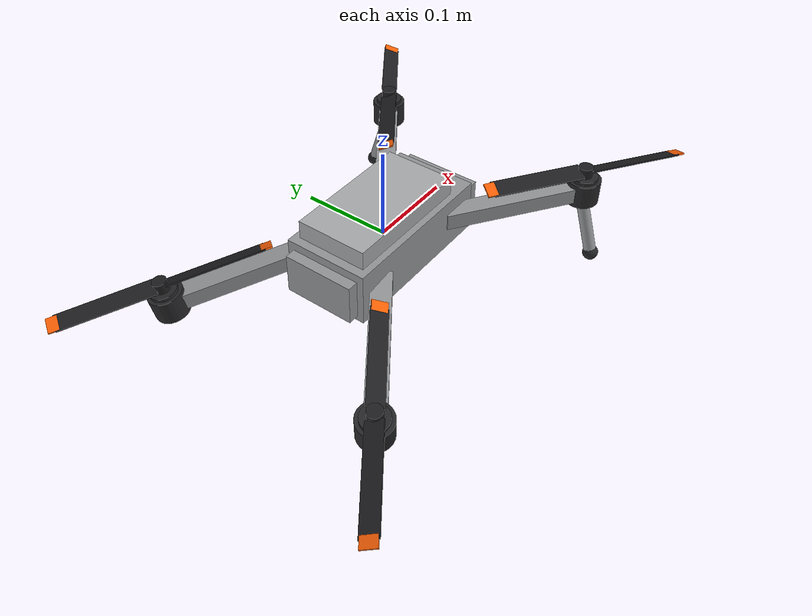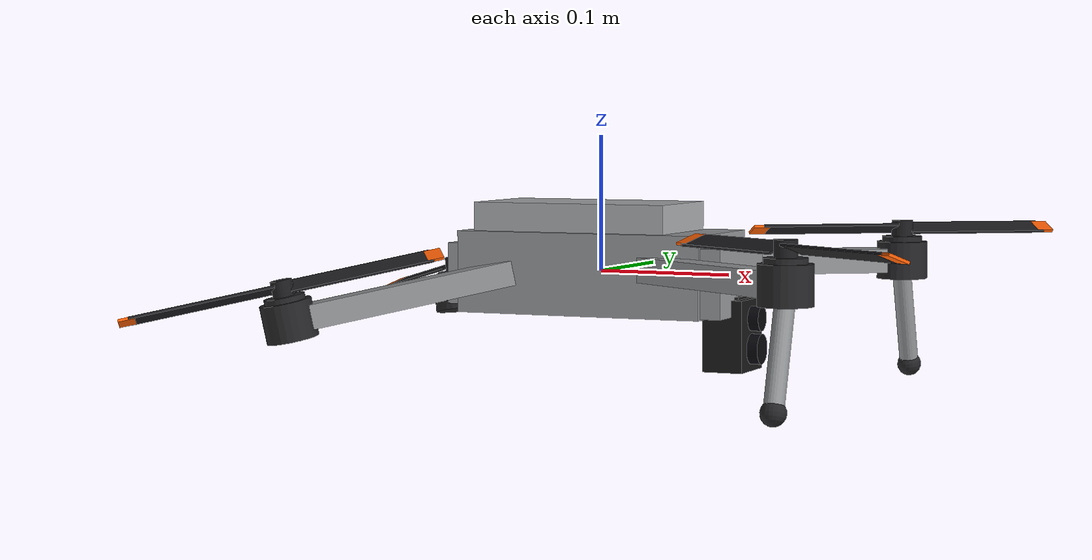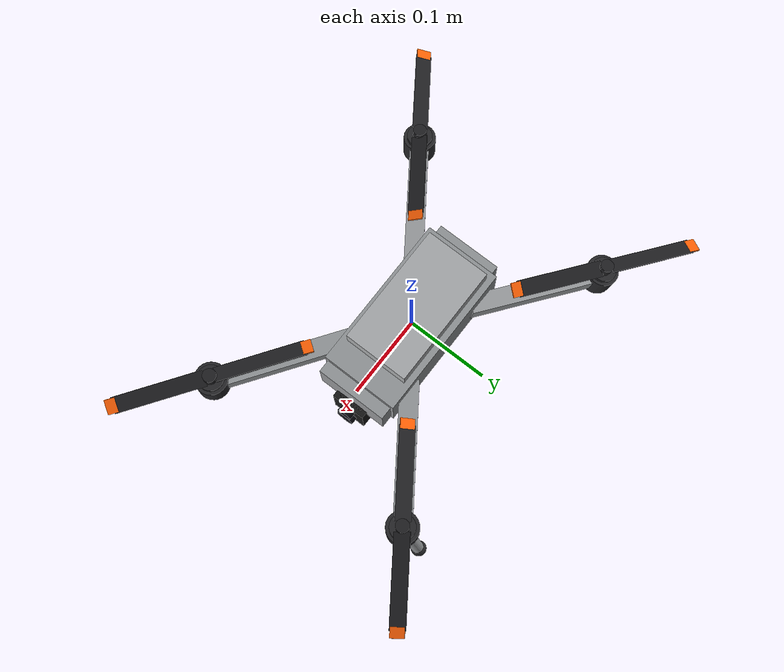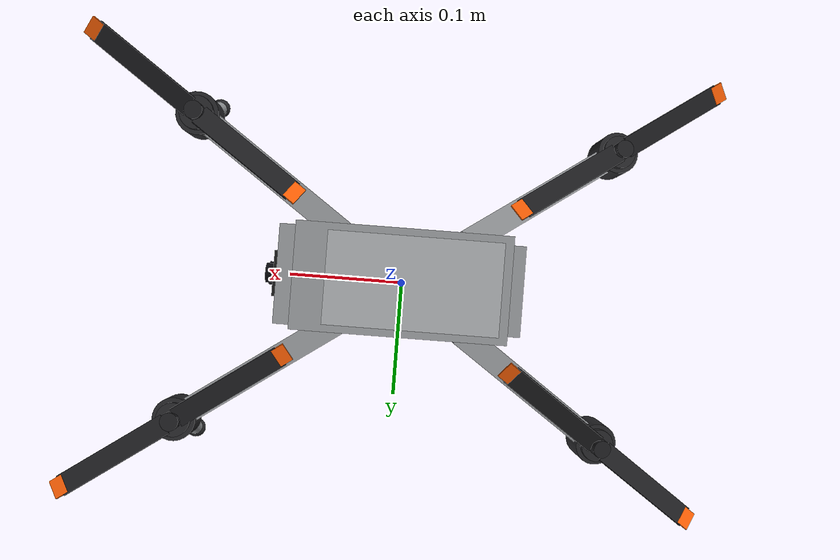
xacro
<?xml version="1.0"?>
<robot name="air3s_style_quadrotor" xmlns:xacro="http://www.ros.org/wiki/xacro">

  <!-- Inclus les plugins Gazebo définis séparément -->
  <xacro:include filename="plugin.xacro"/>

  <!-- ================= Materials ================= -->
  <material name="BodyGray"><color rgba="0.580 0.590 0.600 1.0"/></material>
  <material name="ShellGray"><color rgba="0.660 0.670 0.680 1.0"/></material>
  <material name="MotorDark"><color rgba="0.150 0.150 0.160 1.0"/></material>
  <material name="PropDark"><color rgba="0.120 0.120 0.130 1.0"/></material>
  <material name="OrangeTip"><color rgba="1.000 0.380 0.020 1.0"/></material>
  <material name="GimbalBlack"><color rgba="0.090 0.090 0.090 1.0"/></material>
  <material name="LensGlass"><color rgba="0.030 0.030 0.050 1.0"/></material>

  <!-- ================= Fuselage ================= -->
  <link name="base_link">
    <inertial>
      <origin xyz="0 0 0" rpy="0 0 0"/>
      <mass value="0.400"/>
      <inertia
        ixx="0.000420" ixy="0.0" ixz="0.0"
        iyy="0.001324" iyz="0.0"
        izz="0.001502"/>
    </inertial>

    <visual>
      <origin xyz="0 0 0" rpy="0 0 0"/>
      <geometry><box size="0.190 0.095 0.060"/></geometry>
      <material name="BodyGray"/>
    </visual>
    <visual>
      <origin xyz="-0.010 0 0.040" rpy="0 0 0"/>
      <geometry><box size="0.150 0.080 0.022"/></geometry>
      <material name="ShellGray"/>
    </visual>
    <visual>
      <origin xyz="0.090 0 -0.004" rpy="0 0 0"/>
      <geometry><box size="0.040 0.088 0.050"/></geometry>
      <material name="BodyGray"/>
    </visual>
    <visual>
      <origin xyz="-0.092 0 -0.002" rpy="0 0 0"/>
      <geometry><box size="0.030 0.080 0.045"/></geometry>
      <material name="BodyGray"/>
    </visual>

    <collision>
      <origin xyz="0 0 0" rpy="0 0 0"/>
      <geometry><box size="0.190 0.095 0.060"/></geometry>
    </collision>
  </link>

  <!-- ================= Bras + moteurs ================= -->

  <!-- Bras avant gauche -->
  <link name="arm_fl_link">
    <inertial>
      <origin xyz="0.119 0 0" rpy="0 0 0"/>
      <mass value="0.052"/>
      <inertia
        ixx="0.0000054" ixy="0.0" ixz="0.0"
        iyy="0.0001578" iyz="0.0"
        izz="0.0001587"/>
    </inertial>
    <visual>
      <origin xyz="0.085 0 0" rpy="0 0 0"/>
      <geometry><box size="0.170 0.022 0.018"/></geometry>
      <material name="BodyGray"/>
    </visual>
    <visual>
      <origin xyz="0.165 0 0" rpy="0 0 0"/>
      <geometry><cylinder radius="0.019" length="0.028"/></geometry>
      <material name="MotorDark"/>
    </visual>
    <visual>
      <origin xyz="0.165 0 0.016" rpy="0 0 0"/>
      <geometry><cylinder radius="0.015" length="0.004"/></geometry>
      <material name="MotorDark"/>
    </visual>
    <collision>
      <origin xyz="0.085 0 0" rpy="0 0 0"/>
      <geometry><box size="0.170 0.022 0.018"/></geometry>
    </collision>
    <collision>
      <origin xyz="0.165 0 0" rpy="0 0 0"/>
      <geometry><cylinder radius="0.019" length="0.028"/></geometry>
    </collision>
  </link>

  <joint name="arm_fl_joint" type="fixed">
    <origin xyz="0.055 0.040 0.005" rpy="0 0 0.6109"/>
    <parent link="base_link"/>
    <child link="arm_fl_link"/>
  </joint>

  <!-- Bras avant droit -->
  <link name="arm_fr_link">
    <inertial>
      <origin xyz="0.119 0 0" rpy="0 0 0"/>
      <mass value="0.052"/>
      <inertia
        ixx="0.0000054" ixy="0.0" ixz="0.0"
        iyy="0.0001578" iyz="0.0"
        izz="0.0001587"/>
    </inertial>
    <visual>
      <origin xyz="0.085 0 0" rpy="0 0 0"/>
      <geometry><box size="0.170 0.022 0.018"/></geometry>
      <material name="BodyGray"/>
    </visual>
    <visual>
      <origin xyz="0.165 0 0" rpy="0 0 0"/>
      <geometry><cylinder radius="0.019" length="0.028"/></geometry>
      <material name="MotorDark"/>
    </visual>
    <visual>
      <origin xyz="0.165 0 0.016" rpy="0 0 0"/>
      <geometry><cylinder radius="0.015" length="0.004"/></geometry>
      <material name="MotorDark"/>
    </visual>
    <collision>
      <origin xyz="0.085 0 0" rpy="0 0 0"/>
      <geometry><box size="0.170 0.022 0.018"/></geometry>
    </collision>
    <collision>
      <origin xyz="0.165 0 0" rpy="0 0 0"/>
      <geometry><cylinder radius="0.019" length="0.028"/></geometry>
    </collision>
  </link>

  <joint name="arm_fr_joint" type="fixed">
    <origin xyz="0.055 -0.040 0.005" rpy="0 0 -0.6109"/>
    <parent link="base_link"/>
    <child link="arm_fr_link"/>
  </joint>

  <!-- Bras arrière gauche -->
  <link name="arm_rl_link">
    <inertial>
      <origin xyz="0.119 0 0" rpy="0 0 0"/>
      <mass value="0.052"/>
      <inertia
        ixx="0.0000054" ixy="0.0" ixz="0.0"
        iyy="0.0001578" iyz="0.0"
        izz="0.0001587"/>
    </inertial>
    <visual>
      <origin xyz="0.085 0 0" rpy="0 0 0"/>
      <geometry><box size="0.170 0.022 0.018"/></geometry>
      <material name="BodyGray"/>
    </visual>
    <visual>
      <origin xyz="0.165 0 0" rpy="0 0 0"/>
      <geometry><cylinder radius="0.019" length="0.028"/></geometry>
      <material name="MotorDark"/>
    </visual>
    <visual>
      <origin xyz="0.165 0 0.016" rpy="0 0 0"/>
      <geometry><cylinder radius="0.015" length="0.004"/></geometry>
      <material name="MotorDark"/>
    </visual>
    <collision>
      <origin xyz="0.085 0 0" rpy="0 0 0"/>
      <geometry><box size="0.170 0.022 0.018"/></geometry>
    </collision>
    <collision>
      <origin xyz="0.165 0 0" rpy="0 0 0"/>
      <geometry><cylinder radius="0.019" length="0.028"/></geometry>
    </collision>
  </link>

  <joint name="arm_rl_joint" type="fixed">
    <origin xyz="-0.055 0.040 0.000" rpy="0 0.20 2.5307"/>
    <parent link="base_link"/>
    <child link="arm_rl_link"/>
  </joint>

  <!-- Bras arrière droit -->
  <link name="arm_rr_link">
    <inertial>
      <origin xyz="0.119 0 0" rpy="0 0 0"/>
      <mass value="0.052"/>
      <inertia
        ixx="0.0000054" ixy="0.0" ixz="0.0"
        iyy="0.0001578" iyz="0.0"
        izz="0.0001587"/>
    </inertial>
    <visual>
      <origin xyz="0.085 0 0" rpy="0 0 0"/>
      <geometry><box size="0.170 0.022 0.018"/></geometry>
      <material name="BodyGray"/>
    </visual>
    <visual>
      <origin xyz="0.165 0 0" rpy="0 0 0"/>
      <geometry><cylinder radius="0.019" length="0.028"/></geometry>
      <material name="MotorDark"/>
    </visual>
    <visual>
      <origin xyz="0.165 0 0.016" rpy="0 0 0"/>
      <geometry><cylinder radius="0.015" length="0.004"/></geometry>
      <material name="MotorDark"/>
    </visual>
    <collision>
      <origin xyz="0.085 0 0" rpy="0 0 0"/>
      <geometry><box size="0.170 0.022 0.018"/></geometry>
    </collision>
    <collision>
      <origin xyz="0.165 0 0" rpy="0 0 0"/>
      <geometry><cylinder radius="0.019" length="0.028"/></geometry>
    </collision>
  </link>

  <joint name="arm_rr_joint" type="fixed">
    <origin xyz="-0.055 -0.040 0.000" rpy="0 0.20 -2.5307"/>
    <parent link="base_link"/>
    <child link="arm_rr_link"/>
  </joint>

  <!-- ================= Hélices ================= -->

  <!-- Hélice avant gauche -->
  <link name="prop_fl_link">
    <inertial>
      <origin xyz="0 0 0" rpy="0 0 0"/>
      <mass value="0.009"/>
      <inertia
        ixx="0.0000040" ixy="0.0" ixz="0.0"
        iyy="0.0000430" iyz="0.0"
        izz="0.0000430"/>
    </inertial>
    <visual>
      <origin xyz="0 0 0" rpy="0 0 0"/>
      <geometry><cylinder radius="0.008" length="0.012"/></geometry>
      <material name="PropDark"/>
    </visual>
    <visual>
      <origin xyz="0.058 0 0" rpy="0.35 0 0"/>
      <geometry><box size="0.105 0.019 0.0018"/></geometry>
      <material name="PropDark"/>
    </visual>
    <visual>
      <origin xyz="0.112 0 0" rpy="0.35 0 0"/>
      <geometry><box size="0.012 0.017 0.0020"/></geometry>
      <material name="OrangeTip"/>
    </visual>
    <visual>
      <origin xyz="-0.058 0 0" rpy="-0.35 0 0"/>
      <geometry><box size="0.105 0.019 0.0018"/></geometry>
      <material name="PropDark"/>
    </visual>
    <visual>
      <origin xyz="-0.112 0 0" rpy="-0.35 0 0"/>
      <geometry><box size="0.012 0.017 0.0020"/></geometry>
      <material name="OrangeTip"/>
    </visual>
    <collision>
      <origin xyz="0 0 0" rpy="0 0 0"/>
      <geometry><cylinder radius="0.120" length="0.004"/></geometry>
    </collision>
  </link>

  <joint name="prop_fl_joint" type="continuous">
    <origin xyz="0.165 0 0.024" rpy="0 0 0"/>
    <parent link="arm_fl_link"/>
    <child link="prop_fl_link"/>
    <axis xyz="0 0 1"/>
    <dynamics damping="0.0006" friction="0.0002"/>
  </joint>

  <!-- Hélice avant droite -->
  <link name="prop_fr_link">
    <inertial>
      <origin xyz="0 0 0" rpy="0 0 0"/>
      <mass value="0.009"/>
      <inertia
        ixx="0.0000040" ixy="0.0" ixz="0.0"
        iyy="0.0000430" iyz="0.0"
        izz="0.0000430"/>
    </inertial>
    <visual>
      <origin xyz="0 0 0" rpy="0 0 0"/>
      <geometry><cylinder radius="0.008" length="0.012"/></geometry>
      <material name="PropDark"/>
    </visual>
    <visual>
      <origin xyz="0.058 0 0" rpy="-0.35 0 0"/>
      <geometry><box size="0.105 0.019 0.0018"/></geometry>
      <material name="PropDark"/>
    </visual>
    <visual>
      <origin xyz="0.112 0 0" rpy="-0.35 0 0"/>
      <geometry><box size="0.012 0.017 0.0020"/></geometry>
      <material name="OrangeTip"/>
    </visual>
    <visual>
      <origin xyz="-0.058 0 0" rpy="0.35 0 0"/>
      <geometry><box size="0.105 0.019 0.0018"/></geometry>
      <material name="PropDark"/>
    </visual>
    <visual>
      <origin xyz="-0.112 0 0" rpy="0.35 0 0"/>
      <geometry><box size="0.012 0.017 0.0020"/></geometry>
      <material name="OrangeTip"/>
    </visual>
    <collision>
      <origin xyz="0 0 0" rpy="0 0 0"/>
      <geometry><cylinder radius="0.120" length="0.004"/></geometry>
    </collision>
  </link>

  <joint name="prop_fr_joint" type="continuous">
    <origin xyz="0.165 0 0.024" rpy="0 0 0"/>
    <parent link="arm_fr_link"/>
    <child link="prop_fr_link"/>
    <axis xyz="0 0 1"/>
    <dynamics damping="0.0006" friction="0.0002"/>
  </joint>

  <!-- Hélice arrière gauche -->
  <link name="prop_rl_link">
    <inertial>
      <origin xyz="0 0 0" rpy="0 0 0"/>
      <mass value="0.009"/>
      <inertia
        ixx="0.0000040" ixy="0.0" ixz="0.0"
        iyy="0.0000430" iyz="0.0"
        izz="0.0000430"/>
    </inertial>
    <visual>
      <origin xyz="0 0 0" rpy="0 0 0"/>
      <geometry><cylinder radius="0.008" length="0.012"/></geometry>
      <material name="PropDark"/>
    </visual>
    <visual>
      <origin xyz="0.058 0 0" rpy="-0.35 0 0"/>
      <geometry><box size="0.105 0.019 0.0018"/></geometry>
      <material name="PropDark"/>
    </visual>
    <visual>
      <origin xyz="0.112 0 0" rpy="-0.35 0 0"/>
      <geometry><box size="0.012 0.017 0.0020"/></geometry>
      <material name="OrangeTip"/>
    </visual>
    <visual>
      <origin xyz="-0.058 0 0" rpy="0.35 0 0"/>
      <geometry><box size="0.105 0.019 0.0018"/></geometry>
      <material name="PropDark"/>
    </visual>
    <visual>
      <origin xyz="-0.112 0 0" rpy="0.35 0 0"/>
      <geometry><box size="0.012 0.017 0.0020"/></geometry>
      <material name="OrangeTip"/>
    </visual>
    <collision>
      <origin xyz="0 0 0" rpy="0 0 0"/>
      <geometry><cylinder radius="0.120" length="0.004"/></geometry>
    </collision>
  </link>

  <joint name="prop_rl_joint" type="continuous">
    <origin xyz="0.165 0 0.024" rpy="0 0 0"/>
    <parent link="arm_rl_link"/>
    <child link="prop_rl_link"/>
    <axis xyz="0 0 1"/>
    <dynamics damping="0.0006" friction="0.0002"/>
  </joint>

  <!-- Hélice arrière droite -->
  <link name="prop_rr_link">
    <inertial>
      <origin xyz="0 0 0" rpy="0 0 0"/>
      <mass value="0.009"/>
      <inertia
        ixx="0.0000040" ixy="0.0" ixz="0.0"
        iyy="0.0000430" iyz="0.0"
        izz="0.0000430"/>
    </inertial>
    <visual>
      <origin xyz="0 0 0" rpy="0 0 0"/>
      <geometry><cylinder radius="0.008" length="0.012"/></geometry>
      <material name="PropDark"/>
    </visual>
    <visual>
      <origin xyz="0.058 0 0" rpy="0.35 0 0"/>
      <geometry><box size="0.105 0.019 0.0018"/></geometry>
      <material name="PropDark"/>
    </visual>
    <visual>
      <origin xyz="0.112 0 0" rpy="0.35 0 0"/>
      <geometry><box size="0.012 0.017 0.0020"/></geometry>
      <material name="OrangeTip"/>
    </visual>
    <visual>
      <origin xyz="-0.058 0 0" rpy="-0.35 0 0"/>
      <geometry><box size="0.105 0.019 0.0018"/></geometry>
      <material name="PropDark"/>
    </visual>
    <visual>
      <origin xyz="-0.112 0 0" rpy="-0.35 0 0"/>
      <geometry><box size="0.012 0.017 0.0020"/></geometry>
      <material name="OrangeTip"/>
    </visual>
    <collision>
      <origin xyz="0 0 0" rpy="0 0 0"/>
      <geometry><cylinder radius="0.120" length="0.004"/></geometry>
    </collision>
  </link>

  <joint name="prop_rr_joint" type="continuous">
    <origin xyz="0.165 0 0.024" rpy="0 0 0"/>
    <parent link="arm_rr_link"/>
    <child link="prop_rr_link"/>
    <axis xyz="0 0 1"/>
    <dynamics damping="0.0006" friction="0.0002"/>
  </joint>

  <!-- ================= Pattes d'atterrissage ================= -->

  <link name="leg_l_link">
    <inertial>
      <origin xyz="0 0 -0.0375" rpy="0 0 0"/>
      <mass value="0.012"/>
      <inertia
        ixx="0.0000058" ixy="0.0" ixz="0.0"
        iyy="0.0000058" iyz="0.0"
        izz="0.00000029"/>
    </inertial>
    <visual>
      <origin xyz="0 0 -0.0375" rpy="0 0 0"/>
      <geometry><cylinder radius="0.007" length="0.075"/></geometry>
      <material name="BodyGray"/>
    </visual>
    <visual>
      <origin xyz="0 0 -0.075" rpy="0 0 0"/>
      <geometry><sphere radius="0.009"/></geometry>
      <material name="MotorDark"/>
    </visual>
    <collision>
      <origin xyz="0 0 -0.0375" rpy="0 0 0"/>
      <geometry><cylinder radius="0.007" length="0.075"/></geometry>
    </collision>
  </link>

  <joint name="leg_l_joint" type="fixed">
    <origin xyz="0.190 0.135 -0.005" rpy="0.30 0 0"/>
    <parent link="base_link"/>
    <child link="leg_l_link"/>
  </joint>

  <link name="leg_r_link">
    <inertial>
      <origin xyz="0 0 -0.0375" rpy="0 0 0"/>
      <mass value="0.012"/>
      <inertia
        ixx="0.0000058" ixy="0.0" ixz="0.0"
        iyy="0.0000058" iyz="0.0"
        izz="0.00000029"/>
    </inertial>
    <visual>
      <origin xyz="0 0 -0.0375" rpy="0 0 0"/>
      <geometry><cylinder radius="0.007" length="0.075"/></geometry>
      <material name="BodyGray"/>
    </visual>
    <visual>
      <origin xyz="0 0 -0.075" rpy="0 0 0"/>
      <geometry><sphere radius="0.009"/></geometry>
      <material name="MotorDark"/>
    </visual>
    <collision>
      <origin xyz="0 0 -0.0375" rpy="0 0 0"/>
      <geometry><cylinder radius="0.007" length="0.075"/></geometry>
    </collision>
  </link>

  <joint name="leg_r_joint" type="fixed">
    <origin xyz="0.190 -0.135 -0.005" rpy="-0.30 0 0"/>
    <parent link="base_link"/>
    <child link="leg_r_link"/>
  </joint>

  <!-- ================= Nacelle caméra 2 axes ================= -->

  <link name="gimbal_yaw_link">
    <inertial>
      <origin xyz="0 0 -0.009" rpy="0 0 0"/>
      <mass value="0.020"/>
      <inertia
        ixx="0.0000022" ixy="0.0" ixz="0.0"
        iyy="0.0000022" iyz="0.0"
        izz="0.0000030"/>
    </inertial>
    <visual>
      <origin xyz="0 0 -0.009" rpy="0 0 0"/>
      <geometry><box size="0.030 0.030 0.018"/></geometry>
      <material name="GimbalBlack"/>
    </visual>
    <collision>
      <origin xyz="0 0 -0.009" rpy="0 0 0"/>
      <geometry><box size="0.030 0.030 0.018"/></geometry>
    </collision>
  </link>

  <joint name="gimbal_yaw_joint" type="revolute">
    <origin xyz="0.098 0 -0.015" rpy="0 0 0"/>
    <parent link="base_link"/>
    <child link="gimbal_yaw_link"/>
    <axis xyz="0 0 1"/>
    <limit lower="-0.52" upper="0.52" effort="1.0" velocity="2.0"/>
    <dynamics damping="0.005" friction="0.001"/>
  </joint>

  <link name="camera_link">
    <inertial>
      <origin xyz="0 0 0" rpy="0 0 0"/>
      <mass value="0.045"/>
      <inertia
        ixx="0.0000170" ixy="0.0" ixz="0.0"
        iyy="0.0000139" iyz="0.0"
        izz="0.0000122"/>
    </inertial>
    <visual>
      <origin xyz="0 0 0" rpy="0 0 0"/>
      <geometry><box size="0.030 0.042 0.052"/></geometry>
      <material name="GimbalBlack"/>
    </visual>
    <visual>
      <origin xyz="0.018 0 0.012" rpy="0 1.5708 0"/>
      <geometry><cylinder radius="0.009" length="0.010"/></geometry>
      <material name="LensGlass"/>
    </visual>
    <visual>
      <origin xyz="0.018 0 -0.010" rpy="0 1.5708 0"/>
      <geometry><cylinder radius="0.011" length="0.010"/></geometry>
      <material name="LensGlass"/>
    </visual>
    <collision>
      <origin xyz="0 0 0" rpy="0 0 0"/>
      <geometry><box size="0.030 0.042 0.052"/></geometry>
    </collision>
  </link>

  <joint name="gimbal_pitch_joint" type="revolute">
    <origin xyz="0.005 0 -0.028" rpy="0 0 0"/>
    <parent link="gimbal_yaw_link"/>
    <child link="camera_link"/>
    <axis xyz="0 1 0"/>
    <limit lower="-1.5708" upper="0.6109" effort="1.0" velocity="2.0"/>
    <dynamics damping="0.005" friction="0.001"/>
  </joint>

  <link name="camera_optical_frame">
    <inertial>
      <origin xyz="0 0 0" rpy="0 0 0"/>
      <mass value="0.001"/>
      <inertia
        ixx="0.00000010" ixy="0.0" ixz="0.0"
        iyy="0.00000010" iyz="0.0"
        izz="0.00000010"/>
    </inertial>
  </link>

  <joint name="camera_optical_joint" type="fixed">
    <origin xyz="0.026 0 0" rpy="-1.57079632679 0 -1.57079632679"/>
    <parent link="camera_link"/>
    <child link="camera_optical_frame"/>
  </joint>

  <!-- ================= IMU ================= -->
  <link name="imu_link">
    <inertial>
      <origin xyz="0 0 0" rpy="0 0 0"/>
      <mass value="0.005"/>
      <inertia
        ixx="0.00000036" ixy="0.0" ixz="0.0"
        iyy="0.00000036" iyz="0.0"
        izz="0.00000067"/>
    </inertial>
    <visual>
      <origin xyz="0 0 0" rpy="0 0 0"/>
      <geometry><box size="0.020 0.020 0.005"/></geometry>
      <material name="GimbalBlack"/>
    </visual>
  </link>

  <joint name="imu_joint" type="fixed">
    <origin xyz="0 0 0.010" rpy="0 0 0"/>
    <parent link="base_link"/>
    <child link="imu_link"/>
  </joint>

</robot>
